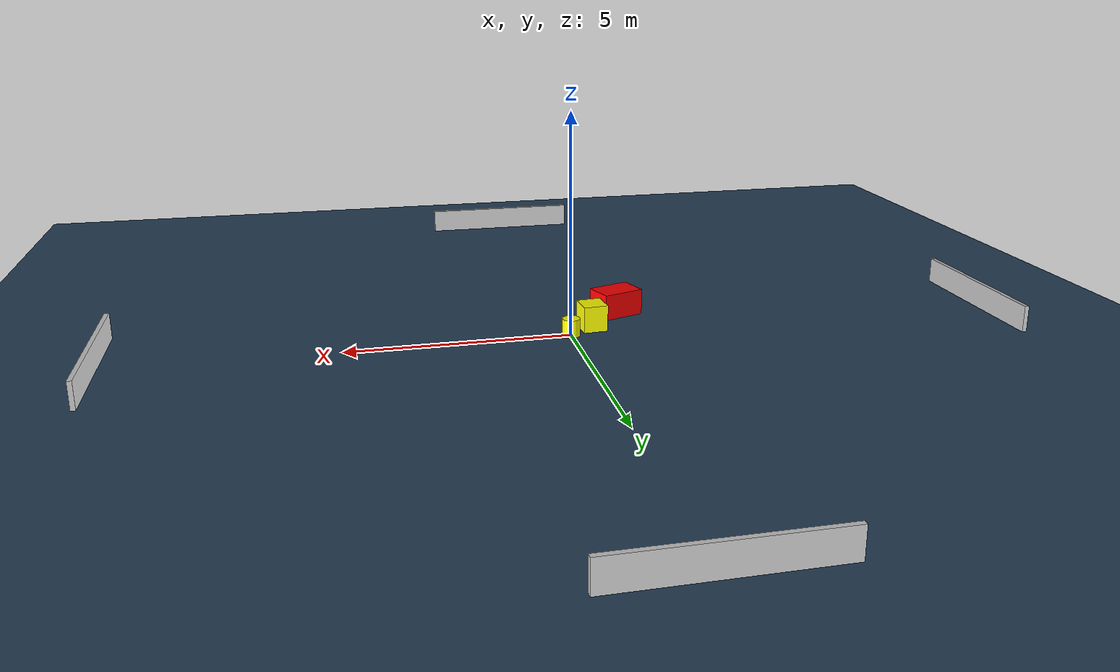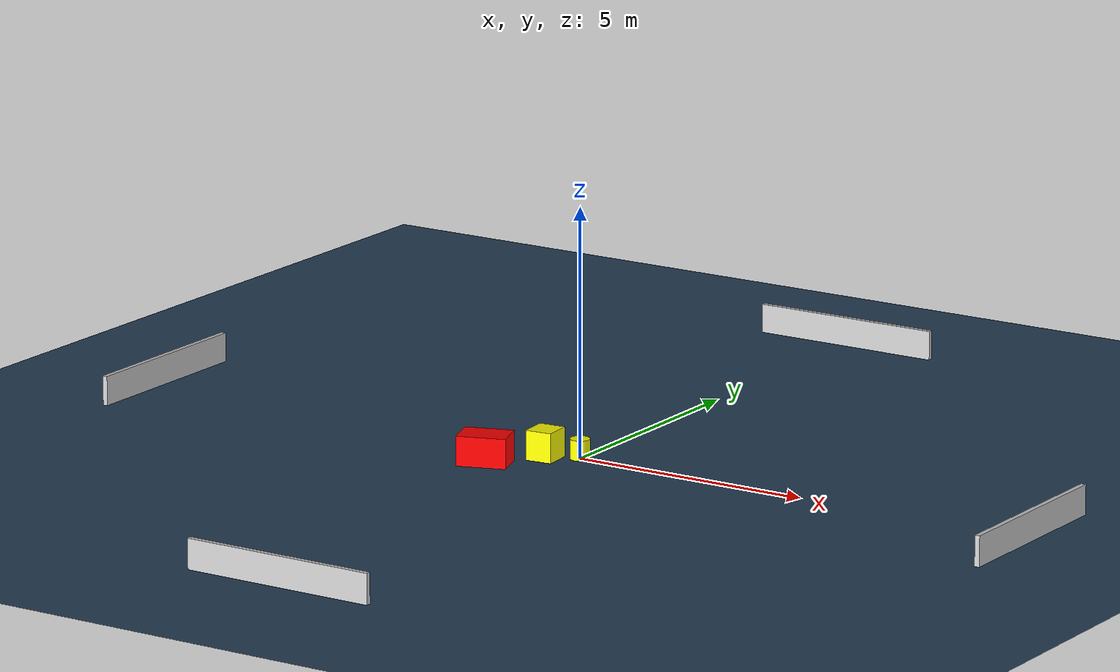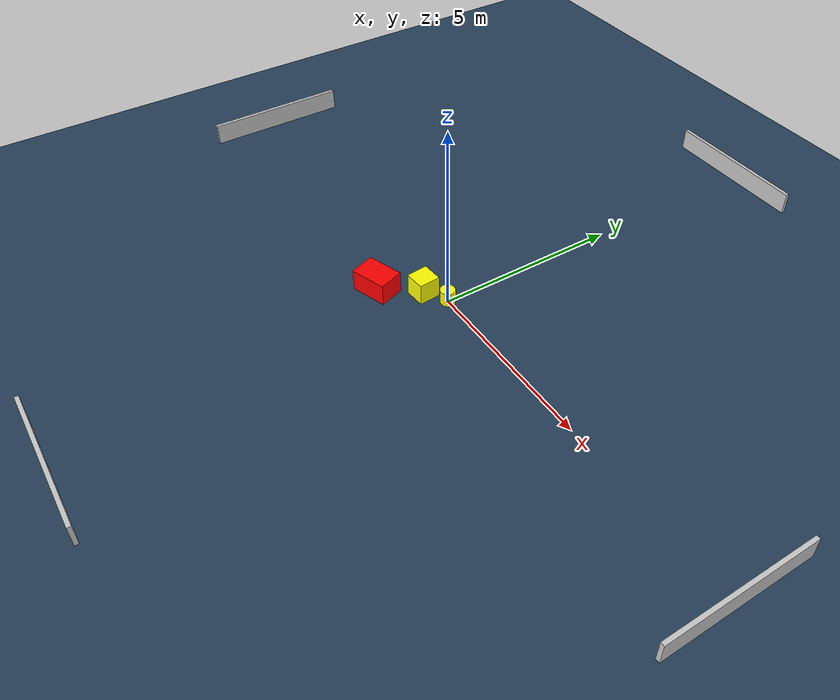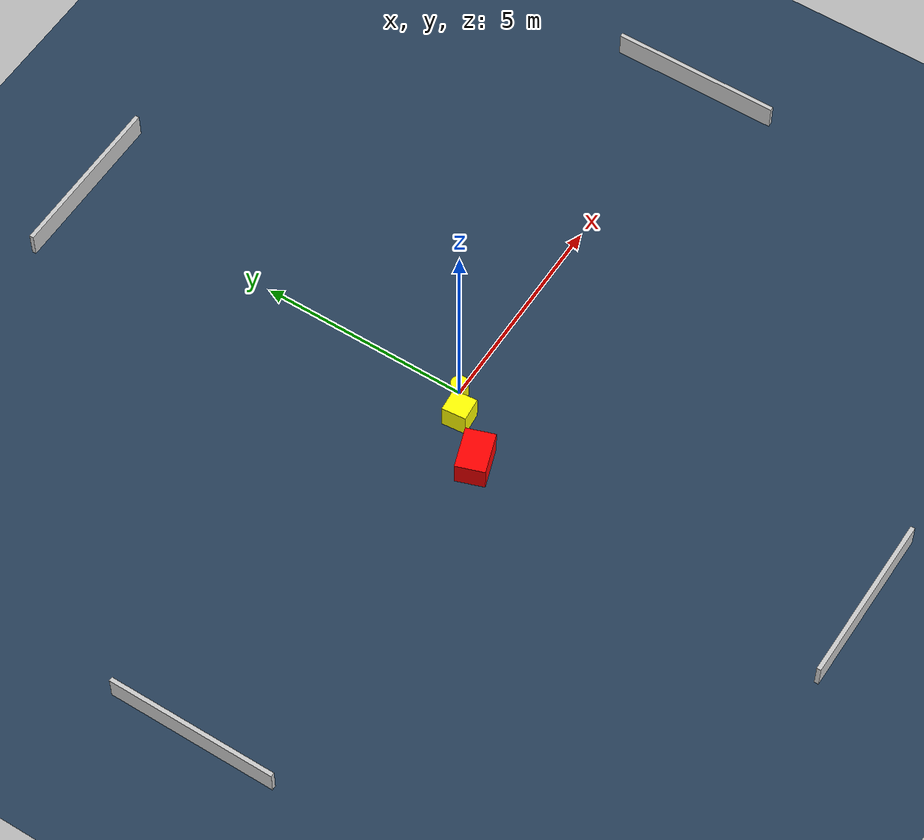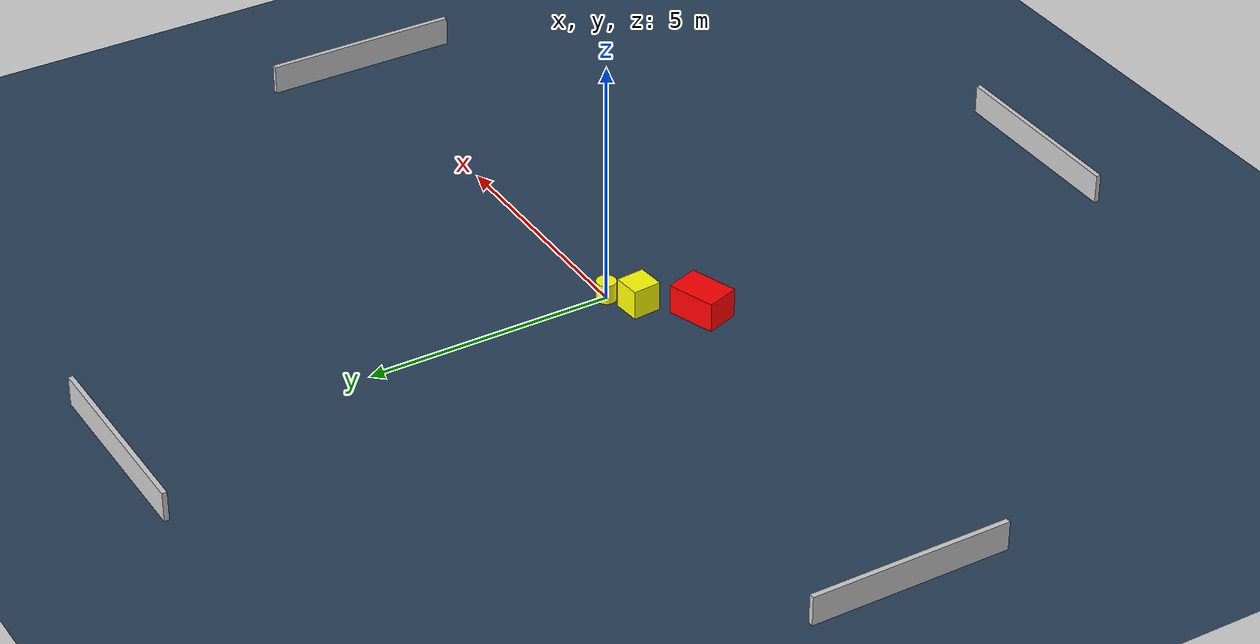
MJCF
<?xml version="1.0" ?>
<mujoco model="generated_environment">
  <option timestep="0.01" integrator="RK4" cone="elliptic"/>
  <default>
    <geom density="1"/>
  </default>
  <asset>
    <texture builtin="gradient" height="3072" name="skybox" rgb1="0.3 0.5 0.7" rgb2="0 0 0" type="skybox" width="512"/>
    <texture builtin="checker" height="300" name="groundplane" rgb1="0.2 0.3 0.4" rgb2="0.1 0.2 0.3" type="2d" width="300"/>
    <material name="groundplane" reflectance="0.2" texrepeat="5 5" texture="groundplane"/>
  </asset>
  <worldbody>
    <light dir="0 0 -1" directional="true" pos="0 0 1.5"/>
    <geom condim="3" friction="0.5 0.005 0.001" material="groundplane" name="floor" pos="0 0 0" size="0 0 0.05" type="plane"/>
    <body name="walls">
      <geom name="wall_1" condim="4" pos="-10.0 0.0 0.3" rgba="0.800000011920929 0.800000011920929 0.800000011920929 1.0" size="0.05 2.0 0.3" type="box"/>
      <geom name="wall_2" condim="4" pos="10.0 0.0 0.3" rgba="0.800000011920929 0.800000011920929 0.800000011920929 1.0" size="0.05 2.0 0.3" type="box"/>
      <geom name="wall_3" condim="4" pos="0.0 -10.0 0.3" rgba="0.800000011920929 0.800000011920929 0.800000011920929 1.0" size="2.0 0.05 0.3" type="box"/>
      <geom name="wall_4" condim="4" pos="0.0 10.0 0.3" rgba="0.800000011920929 0.800000011920929 0.800000011920929 1.0" size="2.0 0.05 0.3" type="box"/>
    </body>
    <body name="robot">
      <joint name="joint_x" type="slide" pos="0 0 0" axis="1 0 0"/>
      <joint name="joint_y" type="slide" pos="0 0 0" axis="0 1 0"/>
      <geom name="robot" type="cylinder" pos="0.0 0.0 0.2" size="0.2 0.2 0.0" mass="5.0" friction="1.0 0.005 0.0001" condim="4" rgba="1.0 1.0 0.0 1.0"/>
    </body>
    <body name="obstacle_1_movable">
      <geom name="obstacle_1_movable" condim="4" pos="-0.5682809671392325 -0.3640466534548053 0.3" euler="0 0 4.986176906344664" friction="0.0 0.005 0.001" rgba="1.0 1.0 0.0 1.0" size="0.27413085682681415 0.2875983143196786 0.3" type="box" mass="0.1"/>
      <joint type="free"/>
    </body>
    <body name="obstacle_2_static">
      <geom name="obstacle_2_static" condim="4" pos="-1.3580538212389808 -1.2713411514508057 0.3" euler="0 0 288.9096314790677" friction="0.0 0.005 0.001" rgba="1.0 0.0 0.0 1.0" size="0.3432224216108929 0.49593449231500647 0.3" type="box"/>
    </body>
  </worldbody>
  <actuator>
    <motor name="actuator_x" joint="joint_x" gear="1" ctrlrange="-1 1"/>
    <motor name="actuator_y" joint="joint_y" gear="1" ctrlrange="-1 1"/>
  </actuator>
</mujoco>
